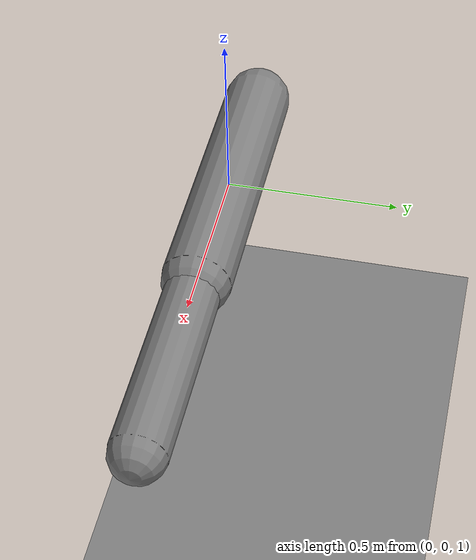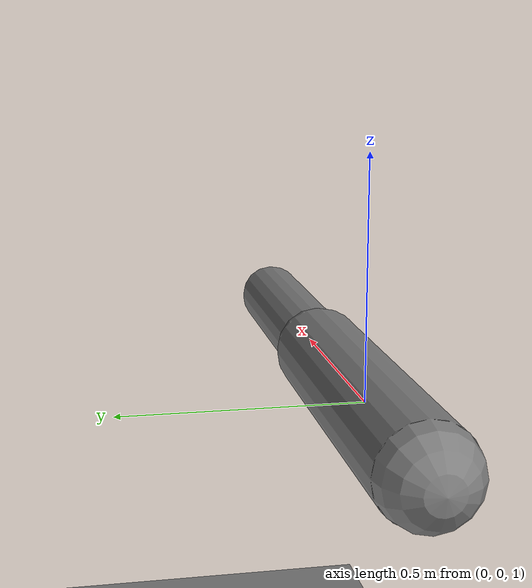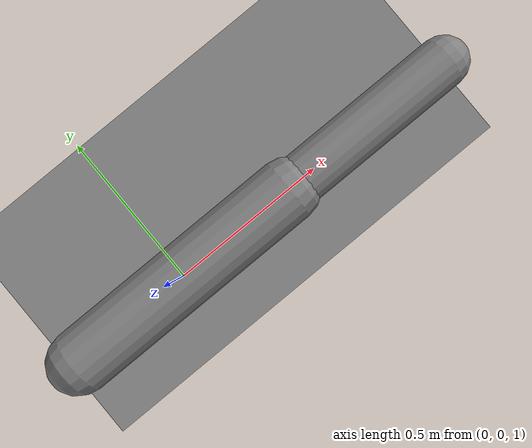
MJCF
<mujoco model="test">
  <worldbody>
    <geom
      name="ground"
      type="plane"
      size="2 2 0.1"
    />

    <body name="base" pos="0 0 1">
      <geom
        type="capsule"
        fromto="-0.4 0 0 0.4 0 0"
        size="0.1"
      />

      <body name="link" pos="0.4 0 0">
        <joint
          name="hinge"
          type="hinge"
          axis="0 1 0"
          damping="0.2"
        />

        <geom
          type="capsule"
          fromto="0 0 0 0.6 0 0"
          size="0.08"
        />
      </body>
    </body>
  </worldbody>

  <actuator>
    <motor
      name="hinge_motor"
      joint="hinge"
      ctrlrange="-100 100"
    />
  </actuator>
</mujoco>
